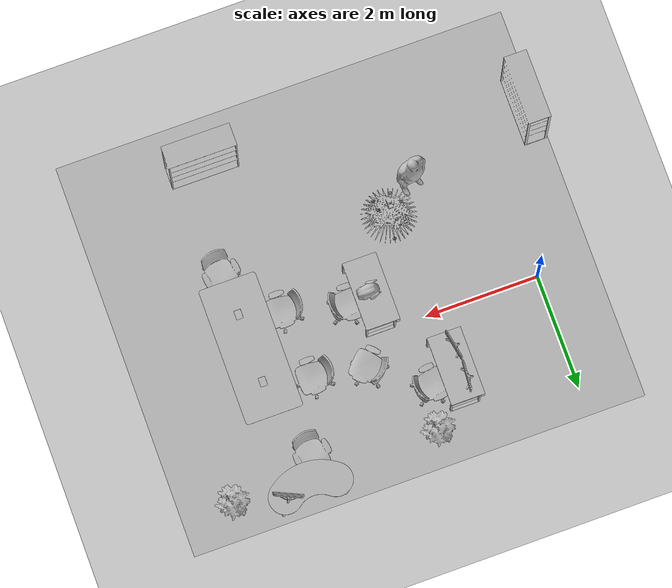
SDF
<sdf version="1.6">
 <world name="default">
  <gravity>0 0 -9.8</gravity>
  <include><uri>model://ground_plane</uri></include>
  <include><uri>model://sun</uri></include>
  <scene><shadows>false</shadows></scene>
  <model name="christmas_tree">
   <static>true</static>
   <include><uri>model://christmas_tree</uri></include>
   <pose>2.0 -1.8 0  0 0 0</pose>
  </model>
  <model name="turkey">
   <static>false</static>
   <include><uri>model://turkey</uri></include>
   <pose>2.8 -0.60 0.76  0 0 0</pose>
  </model>
  <model name="carpet">
   <static>true</static>
   <include><uri>model://carpet</uri></include>
   <pose>0 0 0.002  0 0 0</pose>
  </model>
  <model name="human">
   <static>true</static>
   <include><uri>model://human</uri></include>
   <pose>1.45 -2.22 0  0 0 1.9</pose>
  </model>
  <model name="large_desk">
   <static>true</static>
   <include><uri>model://large_desk</uri></include>
   <pose>4.96 -0.385 0  0 0 0</pose>
  </model>
  <model name="desk">
   <static>true</static>
   <include><uri>model://desk</uri></include>
   <pose>4.815 2 0  0 0 -1.57</pose>
  </model>
  <model name="pc_desk_1">
   <static>true</static>
   <include><uri>model://pc_desk</uri></include>
   <pose>1.8925 1.055 0  0 0 0</pose>
  </model>
  <model name="LGmonitor_1">
   <static>true</static>
   <include><uri>model://LGmonitor_1</uri></include>
   <pose>5.213 2.182 0.7  0 0 -2</pose>
  </model>
  <model name="LGmonitor_2">
   <static>true</static>
   <include><uri>model://LGmonitor_2</uri></include>
   <pose>1.742 1.309 0.72  0 0 -0.08</pose>
  </model>
  <model name="LGmonitor_3">
   <static>true</static>
   <include><uri>model://LGmonitor_3</uri></include>
   <pose>1.766 0.741 0.72  0 0 0.19</pose>
  </model>
  <model name="pc_desk_2">
   <static>true</static>
   <include><uri>model://pc_desk</uri></include>
   <pose>2.7875 -0.605 0  0 0 0</pose>
  </model>
  <model name="shelf_1">
   <static>true</static>
   <include><uri>model://book_shelf</uri></include>
   <pose>4.665 -3.685 0  0 0 1.57</pose>
  </model>
  <model name="shelf_2">
   <static>true</static>
   <include><uri>model://book_shelf</uri></include>
   <pose>-0.78 -2.78 0  0 0 0</pose>
  </model>
  <model name="chair_black_1">
   <static>true</static>
   <include><uri>model://office_chair_black</uri></include>
   <pose>5 -1.816 0  0 0 -3</pose>
  </model>
  <model name="chair_black_2">
   <static>true</static>
   <include><uri>model://office_chair_black</uri></include>
   <pose>4.2 -0.852 0  0 0 1.57</pose>
  </model>
  <model name="chair_red_1">
   <static>true</static>
   <include><uri>model://office_chair_red</uri></include>
   <pose>4.6 1.552 0  0 0 -3.0</pose>
  </model>
  <model name="chair_red_2">
   <static>true</static>
   <include><uri>model://office_chair_red</uri></include>
   <pose>2.342 1.17 0  0 0 -1.45</pose>
  </model>
  <model name="chair_red_3">
   <static>true</static>
   <include><uri>model://office_chair_red</uri></include>
   <pose>3.2 -0.587 0  0 0 -1.6</pose>
  </model>
  <model name="chair_green_1">
   <static>true</static>
   <include><uri>model://office_chair_green</uri></include>
   <pose>4.092 0.374 0  0 0 1.6</pose>
  </model>
  <model name="chair_green_2">
   <static>true</static>
   <include><uri>model://office_chair_green</uri></include>
   <pose>3.2 0.54 0  0 0 0.8</pose>
  </model>
  <model name="indoor_plant_1">
   <static>true</static>
   <include><uri>model://indoor_plant</uri></include>
   <pose>6.1 2 0  0 0 0</pose>
  </model>
  <model name="indoor_plant_2">
   <static>true</static>
   <include><uri>model://indoor_plant</uri></include>
   <pose>2.5 2 0  0 0 0</pose>
  </model>
 </world>
</sdf>

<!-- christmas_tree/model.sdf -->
<sdf version='1.6'>
  <!-- Draw Model -->
  <model name="christmas_tree">
    <static>true</static>

    <link name="tree">
      <pose>0 0 0 0 0 0</pose>

      <collision name="collision">
        <geometry>
          <mesh>
            <uri>model://christmas_tree/meshes/STL/tree.stl</uri>
          </mesh>
        </geometry>
      </collision>

      <visual name="visual">
        <geometry>
          <mesh>
            <uri>model://christmas_tree/meshes/DAE/tree.dae</uri>
          </mesh>
        </geometry>
      </visual>
    </link>

    <link name="light_source_red1">
      <pose>0.19 -0.003 1.0 0 0 0</pose>
      <light name='light' type='point'>
        <cast_shadows>true</cast_shadows>
        <diffuse>50 0 0 255</diffuse>
        <specular>0 0 0 0</specular>
        <attenuation>
          <range>20.0</range>
          <constant>0.10</constant>
          <linear>0.50</linear>
          <quadratic>0.00</quadratic>
        </attenuation>
      </light>

      <visual name='visual'>
        <geometry>
          <sphere>
            <radius>0.03</radius>
          </sphere>
        </geometry>
        <transparency>0.2</transparency>
        <material>
          <lighting>true</lighting>
          <ambient>1 0 0 1</ambient>
          <diffuse>0.5 0.5 0.5 1</diffuse>
          <specular>1 1 1 1</specular>
          <emissive>0.5 0 0 1</emissive>
        </material>
      </visual>
    </link>

    <link name="light_source_red2">
      <pose>0.18 -0.26 0.52 0 0 0</pose>
      <light name='light' type='point'>
        <cast_shadows>true</cast_shadows>
        <diffuse>50 0 0 255</diffuse>
        <specular>0 0 0 0</specular>
        <attenuation>
          <range>20.0</range>
          <constant>0.10</constant>
          <linear>0.50</linear>
          <quadratic>0.00</quadratic>
        </attenuation>
      </light>

      <visual name='visual'>
        <geometry>
          <sphere>
            <radius>0.03</radius>
          </sphere>
        </geometry>
        <transparency>0.2</transparency>
        <material>
          <lighting>true</lighting>
          <ambient>1 0 0 1</ambient>
          <diffuse>0.5 0.5 0.5 1</diffuse>
          <specular>1 1 1 1</specular>
          <emissive>0.5 0 0 1</emissive>
        </material>
      </visual>
    </link>

    <link name="light_source_green1">
      <pose>-0.14 -0.32 0.39 0 0 0</pose>
      <light name='light' type='point'>
        <cast_shadows>true</cast_shadows>
        <diffuse>0 50 0 255</diffuse>
        <specular>0 0 0 0</specular>
        <attenuation>
          <range>20.0</range>
          <constant>0.10</constant>
          <linear>0.50</linear>
          <quadratic>0.00</quadratic>
        </attenuation>
      </light>

      <visual name='visual'>
        <geometry>
          <sphere>
            <radius>0.03</radius>
          </sphere>
        </geometry>
        <transparency>0</transparency>
        <material>
          <lighting>true</lighting>
          <ambient>0 1 0 1</ambient>
          <diffuse>0.5 0.5 0.5 1</diffuse>
          <specular>1 1 1 1</specular>
          <emissive>0 0.5 0 1</emissive>
        </material>
      </visual>
    </link>

    <link name="light_source_green2">
      <pose>-0.06 0.21 0.81 0 0 0</pose>
      <light name='light' type='point'>
        <cast_shadows>true</cast_shadows>
        <diffuse>0 50 0 255</diffuse>
        <specular>0 0 0 0</specular>
        <attenuation>
          <range>20.0</range>
          <constant>0.10</constant>
          <linear>0.50</linear>
          <quadratic>0.00</quadratic>
        </attenuation>
      </light>

      <visual name='visual'>
        <geometry>
          <sphere>
            <radius>0.03</radius>
          </sphere>
        </geometry>
        <transparency>0</transparency>
        <material>
          <lighting>true</lighting>
          <ambient>0 1 0 1</ambient>
          <diffuse>0.5 0.5 0.5 1</diffuse>
          <specular>1 1 1 1</specular>
          <emissive>0 0.5 0 1</emissive>
        </material>
      </visual>
    </link>

    <link name="light_source_blue1">
      <pose>-0.24 -0.07 0.67 0 0 0</pose>
      <light name='light' type='point'>
        <cast_shadows>true</cast_shadows>
        <diffuse>0 0 50 255</diffuse>
        <specular>0 0 0 0</specular>
        <attenuation>
          <range>20.0</range>
          <constant>0.10</constant>
          <linear>0.50</linear>
          <quadratic>0.00</quadratic>
        </attenuation>
      </light>

      <visual name='visual'>
        <geometry>
          <sphere>
            <radius>0.03</radius>
          </sphere>
        </geometry>
        <transparency>0.2</transparency>
        <material>
          <lighting>true</lighting>
          <ambient>0 0 1 1</ambient>
          <diffuse>0.5 0.5 0.5 1</diffuse>
          <specular>1 1 1 1</specular>
          <emissive>0 0 0.5 1</emissive>
        </material>
      </visual>
    </link>

    <link name="light_source_blue2">
      <pose>0.05 0.42 0.30 0 0 0</pose>
      <light name='light' type='point'>
        <cast_shadows>true</cast_shadows>
        <diffuse>0 0 50 255</diffuse>
        <specular>0 0 0 0</specular>
        <attenuation>
          <range>20.0</range>
          <constant>0.10</constant>
          <linear>0.50</linear>
          <quadratic>0.00</quadratic>
        </attenuation>
      </light>

      <visual name='visual'>
        <geometry>
          <sphere>
            <radius>0.03</radius>
          </sphere>
        </geometry>
        <transparency>0.2</transparency>
        <material>
          <lighting>true</lighting>
          <ambient>0 0 1 1</ambient>
          <diffuse>0.5 0.5 0.5 1</diffuse>
          <specular>1 1 1 1</specular>
          <emissive>0 0 0.5 1</emissive>
        </material>
      </visual>
    </link>
  </model>
</sdf>

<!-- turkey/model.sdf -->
<sdf version='1.5'>
  <!-- Draw Model -->
  <model name="turkey">
    <static>true</static>
    <link name="turkey">
      <collision name="collision">
        <geometry>
          <mesh>
            <uri>model://turkey/meshes/STL/turkey.stl</uri>
          </mesh>
        </geometry>
      </collision>

      <visual name="visual">
        <geometry>
          <mesh>
            <uri>model://turkey/meshes/DAE/turkey.dae</uri>
          </mesh>
        </geometry>
      </visual>
    </link>
  </model>
</sdf>

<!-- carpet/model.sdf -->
<sdf version='1.5'>
  <!-- Draw Model -->
  <model name="carpet">
    <static>true</static>
    <link name="carpet">
      <visual name="visual">
        <geometry>
          <mesh>
            <uri>model://carpet/meshes/DAE/carpet.dae</uri>
          </mesh>
        </geometry>
      </visual>
    </link>
  </model>
</sdf>

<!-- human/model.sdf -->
<sdf version='1.5'>
  <!-- Draw Model -->
  <model name="human">
    <static>true</static>
    <link name="human">
      <collision name="collision">
        <geometry>
          <mesh>
            <uri>model://human/meshes/STL/human.stl</uri>
          </mesh>
        </geometry>
      </collision>

      <visual name="visual">
        <geometry>
          <mesh>
            <uri>model://human/meshes/DAE/human.dae</uri>
          </mesh>
        </geometry>
      </visual>
    </link>
  </model>
</sdf>

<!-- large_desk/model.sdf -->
<sdf version='1.5'>
  <!-- Draw Model -->
  <model name="large_desk">
    <static>true</static>
    <link name="large_desk">
      <collision name="collision">
        <geometry>
          <mesh>
            <uri>model://large_desk/meshes/STL/large_desk.stl</uri>
          </mesh>
        </geometry>
      </collision>

      <visual name="visual">
        <geometry>
          <mesh>
            <uri>model://large_desk/meshes/DAE/large_desk.dae</uri>
          </mesh>
        </geometry>
      </visual>
    </link>
  </model>
</sdf>

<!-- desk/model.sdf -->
<sdf version='1.5'>
  <!-- Draw Model -->
  <model name="desk">
    <static>true</static>
    <link name="desk">
      <collision name="collision">
        <geometry>
          <mesh>
            <uri>model://desk/meshes/STL/desk.stl</uri>
          </mesh>
        </geometry>
      </collision>

      <visual name="visual">
        <geometry>
          <mesh>
            <uri>model://desk/meshes/DAE/desk.dae</uri>
          </mesh>
        </geometry>
      </visual>
    </link>
  </model>
</sdf>

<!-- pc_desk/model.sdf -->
<sdf version='1.5'>
  <!-- Draw Model -->
  <model name="pc_desk">
    <static>false</static>
    <link name="pc_desk">
      <collision name="collision">
        <geometry>
          <mesh>
            <uri>model://pc_desk/meshes/STL/pc_desk.stl</uri>
          </mesh>
        </geometry>
      </collision>

      <visual name="visual">
        <geometry>
          <mesh>
            <uri>model://pc_desk/meshes/DAE/pc_desk.dae</uri>
          </mesh>
        </geometry>
      </visual>
    </link>
  </model>
</sdf>

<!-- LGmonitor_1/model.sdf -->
<sdf version='1.5'>
  <!-- Draw Model -->
  <model name="LGmonitor_1">
    <static>true</static>
    <link name="LGmonitor_1">
      <collision name="collision">
        <geometry>
          <mesh>
            <uri>model://LGmonitor_1/meshes/STL/LGmonitor.stl</uri>
          </mesh>
        </geometry>
      </collision>

      <visual name="visual">
        <geometry>
          <mesh>
            <uri>model://LGmonitor_1/meshes/DAE/LGmonitor.dae</uri>
          </mesh>
        </geometry>
      </visual>
    </link>
  </model>
</sdf>

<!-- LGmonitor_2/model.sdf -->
<sdf version='1.5'>
  <!-- Draw Model -->
  <model name="LGmonitor_2">
    <static>true</static>
    <link name="LGmonitor_2">
      <collision name="collision">
        <geometry>
          <mesh>
            <uri>model://LGmonitor_2/meshes/STL/LGmonitor.stl</uri>
          </mesh>
        </geometry>
      </collision>

      <visual name="visual">
        <geometry>
          <mesh>
            <uri>model://LGmonitor_2/meshes/DAE/LGmonitor.dae</uri>
          </mesh>
        </geometry>
      </visual>
    </link>
  </model>
</sdf>

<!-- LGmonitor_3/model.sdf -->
<sdf version='1.5'>
  <!-- Draw Model -->
  <model name="LGmonitor_3">
    <static>true</static>
    <link name="LGmonitor_3">
      <collision name="collision">
        <geometry>
          <mesh>
            <uri>model://LGmonitor_3/meshes/STL/LGmonitor.stl</uri>
          </mesh>
        </geometry>
      </collision>

      <visual name="visual">
        <geometry>
          <mesh>
            <uri>model://LGmonitor_3/meshes/DAE/LGmonitor.dae</uri>
          </mesh>
        </geometry>
      </visual>
    </link>
  </model>
</sdf>

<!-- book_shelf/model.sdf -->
<sdf version='1.5'>
  <!-- Draw Model -->
  <model name="book_shelf">
    <static>false</static>
    <link name="book_shelf">
      <collision name="collision">
        <geometry>
          <mesh>
            <uri>model://book_shelf/meshes/STL/book_shelf.stl</uri>
          </mesh>
        </geometry>
      </collision>

      <visual name="visual">
        <geometry>
          <mesh>
            <uri>model://book_shelf/meshes/DAE/book_shelf.dae</uri>
          </mesh>
        </geometry>
      </visual>
    </link>
  </model>
</sdf>

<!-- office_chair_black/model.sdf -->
<sdf version='1.5'>
  <!-- Draw Model -->
  <model name="office_chair_black">
    <static>true</static>
    <link name="office_chair_black">
      <collision name="collision">
        <geometry>
          <mesh>
            <uri>model://office_chair_black/meshes/STL/office_chair.stl</uri>
          </mesh>
        </geometry>
      </collision>

      <visual name="visual">
        <geometry>
          <mesh>
            <uri>model://office_chair_black/meshes/DAE/office_chair_black.dae</uri>
          </mesh>
        </geometry>
      </visual>
    </link>
  </model>
</sdf>

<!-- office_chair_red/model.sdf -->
<sdf version='1.5'>
  <!-- Draw Model -->
  <model name="office_chair_red">
    <static>true</static>
    <link name="office_chair_red">
      <collision name="collision">
        <geometry>
          <mesh>
            <uri>model://office_chair_red/meshes/STL/office_chair.stl</uri>
          </mesh>
        </geometry>
      </collision>

      <visual name="visual">
        <geometry>
          <mesh>
            <uri>model://office_chair_red/meshes/DAE/office_chair_red.dae</uri>
          </mesh>
        </geometry>
      </visual>
    </link>
  </model>
</sdf>

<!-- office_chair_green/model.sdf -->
<sdf version='1.5'>
  <!-- Draw Model -->
  <model name="office_chair_green">
    <static>true</static>
    <link name="office_chair_green">
      <collision name="collision">
        <geometry>
          <mesh>
            <uri>model://office_chair_green/meshes/STL/office_chair.stl</uri>
          </mesh>
        </geometry>
      </collision>

      <visual name="visual">
        <geometry>
          <mesh>
            <uri>model://office_chair_green/meshes/DAE/office_chair_green.dae</uri>
          </mesh>
        </geometry>
      </visual>
    </link>
  </model>
</sdf>

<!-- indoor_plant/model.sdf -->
<sdf version='1.5'>
  <!-- Draw Model -->
  <model name="indoor_plant">
    <static>true</static>
    <link name="indoor_plant">
      <collision name="collision">
        <geometry>
          <mesh>
            <uri>model://indoor_plant/meshes/STL/indoor_plant.stl</uri>
          </mesh>
        </geometry>
      </collision>

      <visual name="visual">
        <geometry>
          <mesh>
            <uri>model://indoor_plant/meshes/DAE/indoor_plant.dae</uri>
          </mesh>
        </geometry>
      </visual>
    </link>
  </model>
</sdf>
